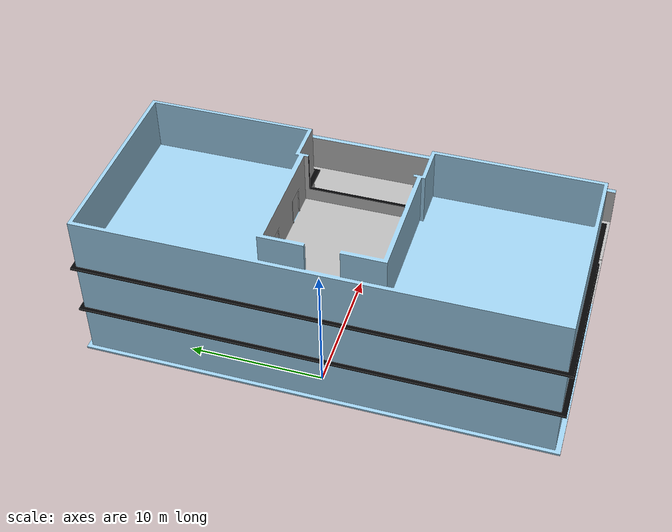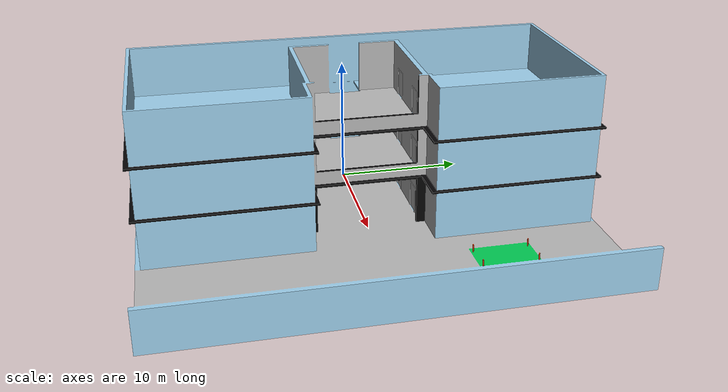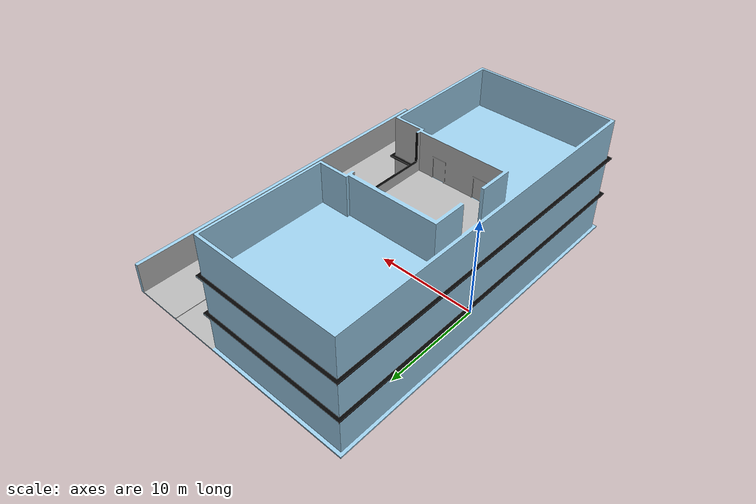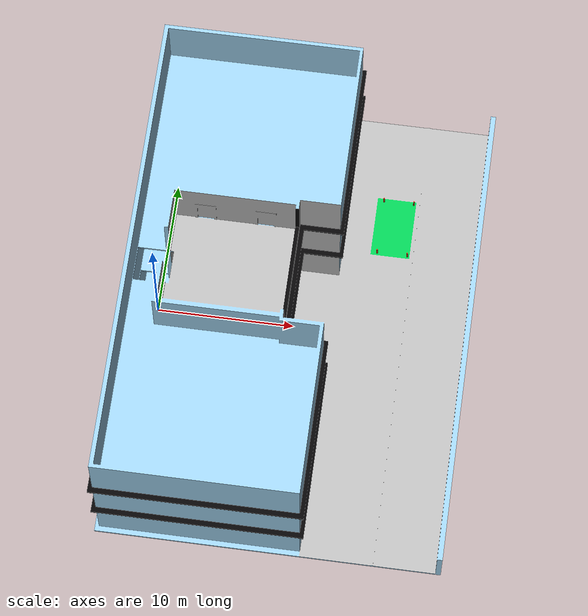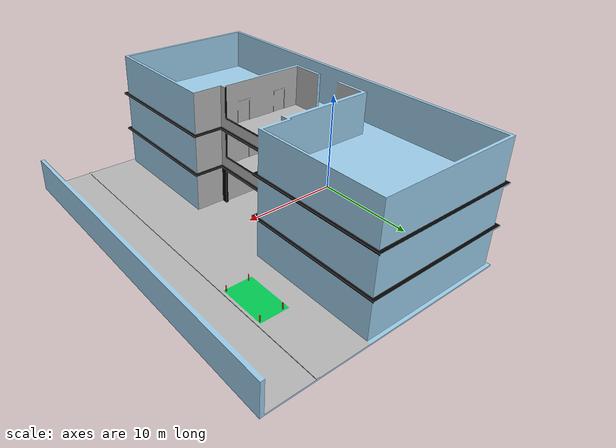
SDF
<?xml verion="1.0" ?>
<sdf version="1.4">
    <world name="default">
        <include>
            <uri>model://sun</uri>
        </include>
        <model name="building">
            <pose>0 0 0 0 0 0</pose>
            <static>true</static>
            <link name="building">
                <visual name="visual">
                    <geometry>
                        <mesh><uri>model://complex_1/building_set2.obj</uri></mesh>
                    </geometry>
                </visual>
                <collision name="collision">
                    <geometry>
                        <mesh><uri>model://complex_1/building_set2.obj</uri></mesh>
                    </geometry>
                </collision>
            </link>
        </model>
    </world>
</sdf>
